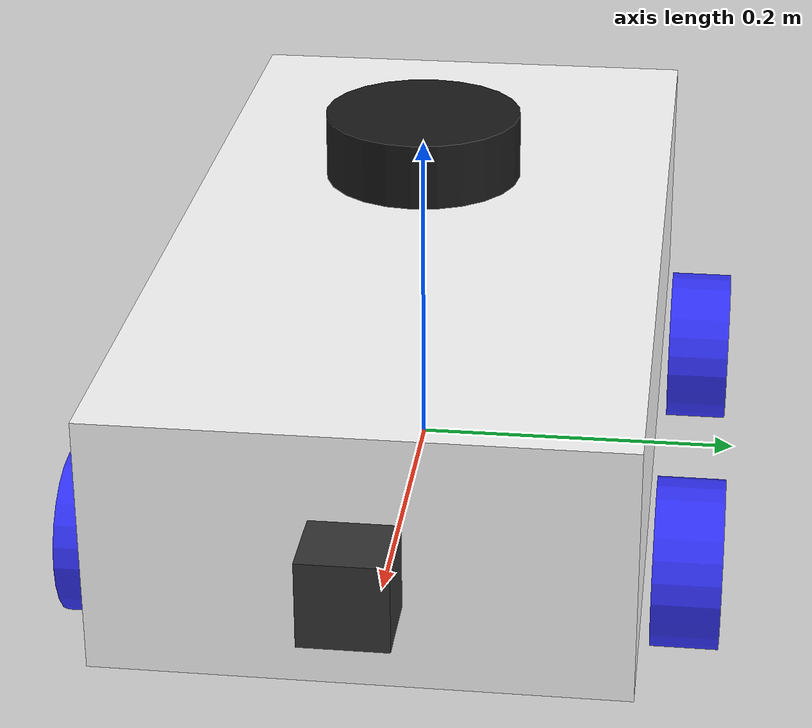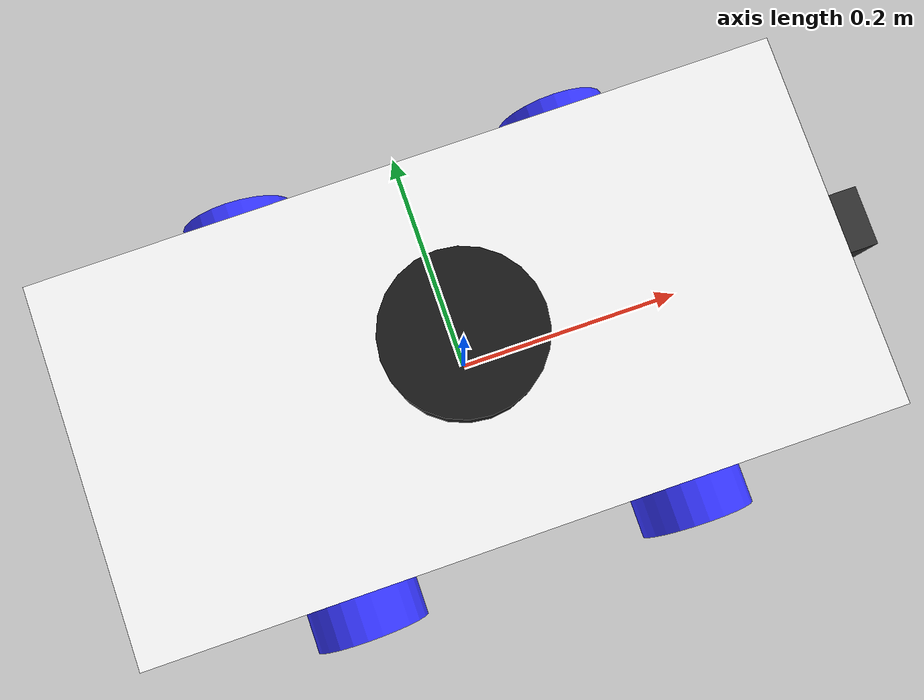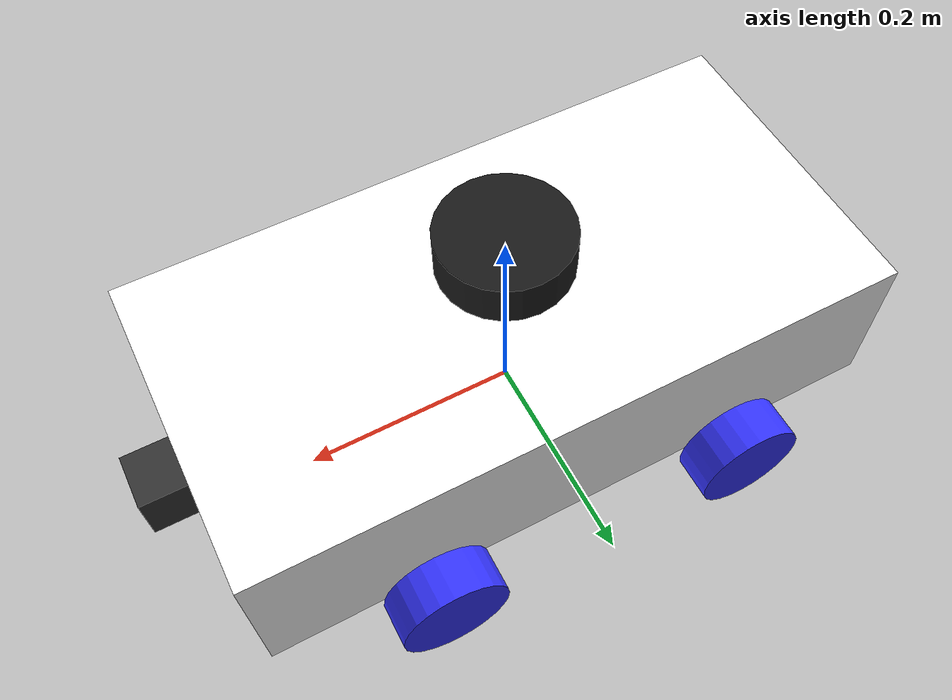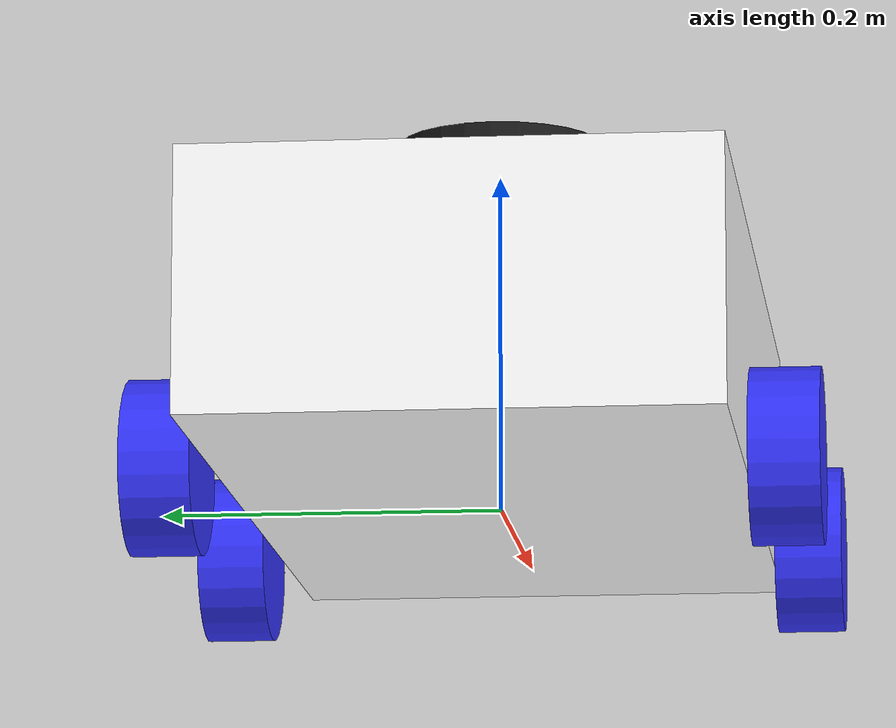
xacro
<?xml version="1.0"?>
<robot xmlns:xacro="http://www.ros.org/wiki/xacro"  name="robot">

    <xacro:include filename="basicmodel.urdf.xacro" />
    <xacro:include filename="gazebo.urdf.xacro" />
    <xacro:include filename="inertial.urdf.xacro" />
    <xacro:include filename="lidar.urdf.xacro" />
    <xacro:include filename="IMU.urdf.xacro" />
    <xacro:include filename="camera.urdf.xacro" />
</robot>

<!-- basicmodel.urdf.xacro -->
<robot xmlns:xacro="http://www.ros.org/wiki/xacro" >

<xacro:include filename="inertial.urdf.xacro"/>
    <material name="white">
        <color rgba="1 1 1 1" />
    </material>

    <material name="orange">
        <color rgba="1 0.3 0.1 1"/>
    </material>

    <material name="blue">
        <color rgba="0.2 0.2 1 1"/>
    </material>

    <material name="black">
        <color rgba="0 0 0 1"/>
    </material>

    <xacro:property name="pi" value="3.1415926535897931"/>

    <!-- BASE LINK -->

    <link name="base_link">

    </link>

    <!-- CHASSIS LINK -->

    <joint name="chassis_joint" type="fixed">
        <parent link="base_link"/>
        <child link="chassis"/>
        <origin xyz="-0.3 0 0"/>
    </joint>

    <link name="chassis">
        <visual>
            <origin xyz="0.3 0 0.075"/>
            <geometry>
                <box size="0.6 0.3 0.15"/>
            </geometry>
            <material name="white"/>
        </visual>
        <collision>
            <origin xyz="0.3 0 0.075"/>
            <geometry>
                <box size="0.6 0.3 0.15"/>
            </geometry>
        </collision>
        <xacro:inertial_box mass="0.5" x="0.6" y="0.3" z="0.15">
            <origin xyz="0.3 0 0.075" rpy="0 0 0"/>
        </xacro:inertial_box>
    </link>

    <!-- LEFT WHEEL LINK -->

    <joint name="left_wheel_back_joint" type="continuous">
        <parent link="base_link"/>
        <child link="left_wheel_back"/>
        <origin xyz="-0.15 0.175 0" rpy="-${pi/2} 0 0" />
        <axis xyz="0 0 1"/>
    </joint>

    <link name="left_wheel_back">
        <visual>
            <geometry>
                <cylinder radius="0.05" length="0.04"/>
            </geometry>
            <material name="blue"/>
        </visual>
        <collision>
            <geometry>
                <cylinder radius="0.05" length="0.04"/>
            </geometry>
        </collision>
        <xacro:inertial_cylinder mass="0.1" length="0.04" radius="0.05">
            <origin xyz="0 0 0" rpy="0 0 0"/>
        </xacro:inertial_cylinder>
    </link>

    <!-- RIGHT WHEEL LINK -->

    <joint name="right_wheel_back_joint" type="continuous">
        <parent link="base_link"/>
        <child link="right_wheel_back"/>
        <origin xyz="-0.15 -0.175 0" rpy="${pi/2} 0 0" />
        <axis xyz="0 0 -1"/>
    </joint>

    <link name="right_wheel_back">
        <visual>
            <geometry>
                <cylinder radius="0.05" length="0.04"/>
            </geometry>
            <material name="blue"/>
        </visual>
        <collision>
            <geometry>
                <cylinder radius="0.05" length="0.04"/>
            </geometry>
        </collision>
        <xacro:inertial_cylinder mass="0.1" length="0.04" radius="0.05">
            <origin xyz="0 0 0" rpy="0 0 0"/>
        </xacro:inertial_cylinder>
    </link>

    <joint name="left_wheel_front_joint" type="continuous">
        <parent link="base_link"/>
        <child link="left_wheel_front"/>
        <origin xyz="0.15 0.175 0" rpy="-${pi/2} 0 0" />
        <axis xyz="0 0 1"/>
    </joint>

    <link name="left_wheel_front">
        <visual>
            <geometry>
                <cylinder radius="0.05" length="0.04"/>
            </geometry>
            <material name="blue"/>
        </visual>
        <collision>
            <geometry>
                <cylinder radius="0.05" length="0.04"/>
            </geometry>
        </collision>
        <xacro:inertial_cylinder mass="0.1" length="0.04" radius="0.05">
            <origin xyz="0 0 0" rpy="0 0 0"/>
        </xacro:inertial_cylinder>
    </link>

    <!-- RIGHT WHEEL LINK -->

    <joint name="right_wheel_front_joint" type="continuous">
        <parent link="base_link"/>
        <child link="right_wheel_front"/>
        <origin xyz="0.15 -0.175 0" rpy="${pi/2} 0 0" />
        <axis xyz="0 0 -1"/>
    </joint>

    <link name="right_wheel_front">
        <visual>
            <geometry>
                <cylinder radius="0.05" length="0.04"/>
            </geometry>
            <material name="blue"/>
        </visual>
        <collision>
            <geometry>
                <cylinder radius="0.05" length="0.04"/>
            </geometry>
        </collision>
        <xacro:inertial_cylinder mass="0.1" length="0.04" radius="0.05">
            <origin xyz="0 0 0" rpy="0 0 0"/>
        </xacro:inertial_cylinder>
    </link>

</robot>

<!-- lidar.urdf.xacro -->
<robot>

<link name="lidar_link">
<visual>
<geometry>
<cylinder radius="0.06" length="0.04"/>
</geometry>
<material name="black">
<color rgba="0.1 0.1 0.1 1.0"/>
</material>
</visual>
<collision>
<geometry>
<cylinder radius="0.06" length="0.04"/>
</geometry>
</collision>
<inertial>
<mass value="0.1"/>
<origin xyz="0 0 0"/>
<inertia ixx="0.000025" ixy="0" ixz="0" iyy="0.000025" iyz="0" izz="0.000025"/>
</inertial>
</link>
<!--
 ── Fixed joint to base ─────────────────────────────────────────
-->
<joint name="lidar_joint" type="fixed">
<parent link="base_link"/>
<child link="lidar_link"/>
<!--
 Adjust xyz to place lidar on top of your robot body
-->
<origin xyz="0 0 0.2" rpy="0 0 0"/>
</joint>

<gazebo reference="lidar_link">
<sensor name="lidar_sensor" type="gpu_lidar">
<pose>0 0 0 0 0 0</pose>
<update_rate>10</update_rate>
<!-- Gazebo internal topic (NOT the ROS2 topic) -->
<!-- Bridge maps this → /scan in ROS2            -->
<topic>lidar</topic>
<gz_frame_id>lidar_link</gz_frame_id>
<lidar>
<scan>
<horizontal>
<samples>360</samples>
<resolution>1</resolution>
<min_angle>-3.14159</min_angle>
<max_angle> 3.14159</max_angle>
</horizontal>
<!-- Remove vertical block for 2D lidar -->
</scan>
<range>
<min>0.15</min>
<max>12.0</max>
<resolution>0.01</resolution>
</range>
<noise>
<type>gaussian</type>
<mean>0.0</mean>
<stddev>0.01</stddev>
</noise>
</lidar>
<always_on>true</always_on>
<visualize>true</visualize>
</sensor>
</gazebo>

</robot>

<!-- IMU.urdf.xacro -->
<robot>

<link name="imu_link">
  <inertial>
    <mass value="0.01"/>
    <origin xyz="0 0 0"/>
    <inertia ixx="0.0000001" ixy="0" ixz="0" iyy="0.0000001" iyz="0" izz="0.0000001"/>
  </inertial>
</link>

<joint name="imu_joint" type="fixed">
  <parent link="base_link"/>
  <child link="imu_link"/>
  <origin xyz="0 0 0.1" rpy="0 0 0"/>
</joint>

<gazebo reference="imu_link">
  <sensor name="imu_sensor" type="imu">
    <always_on>true</always_on>
    <update_rate>100</update_rate>
    <topic>imu</topic>
    <gz_frame_id>imu_link</gz_frame_id>
  </sensor>
</gazebo>

</robot>

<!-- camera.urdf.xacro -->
<robot>

  <link name="camera_link">
    <visual>
     <geometry>
       <box size="0.05 0.05 0.05"/>
      </geometry>

      <material name="dark_grey"> <color rgba="0.2 0.2 0.2 1.0"/> </material>
    </visual>

      <collision>
    <geometry>
        <box size="0.05 0.05 0.05"/>
    </geometry>
  </collision>

  <inertial>
  <mass value="0.05"/>
  <origin xyz="0 0 0"/>
  <inertia ixx="0.000001" ixy="0" ixz="0"
           iyy="0.000001" iyz="0"
           izz="0.000001"/>
</inertial>

</link>
<link name="camera_optical_link"/>

<joint name="camera_joint" type="fixed">
<parent link="base_link"/>
<child link="camera_link"/>
<origin xyz="0.32 0 0.075" rpy="0 0 0"/>
</joint>

<joint name="camera_optical_joint" type="fixed">
<parent link="camera_link"/>
<child link="camera_optical_link"/>
<origin xyz="0 0 0" rpy="0 0 0"/>
</joint>
<gazebo reference="camera_link">
<sensor name="camera_sensor" type="camera">
<pose>0 0 0 0 0 0</pose>
<!-- face forward -->
<update_rate>30</update_rate>
<topic>camera</topic>
<gz_frame_id>camera_optical_link</gz_frame_id>
<camera>
<horizontal_fov>1.047</horizontal_fov>
<image>
<width>640</width>
<height>480</height>
<format>R8G8B8</format>
</image>
<clip>
<near>0.05</near>
<far>100.0</far>
</clip>
<noise>
<type>gaussian</type>
<mean>0.0</mean>
<stddev>0.007</stddev>
</noise>
</camera>
<always_on>true</always_on>
<visualize>true</visualize>
</sensor>
</gazebo>
</robot>
